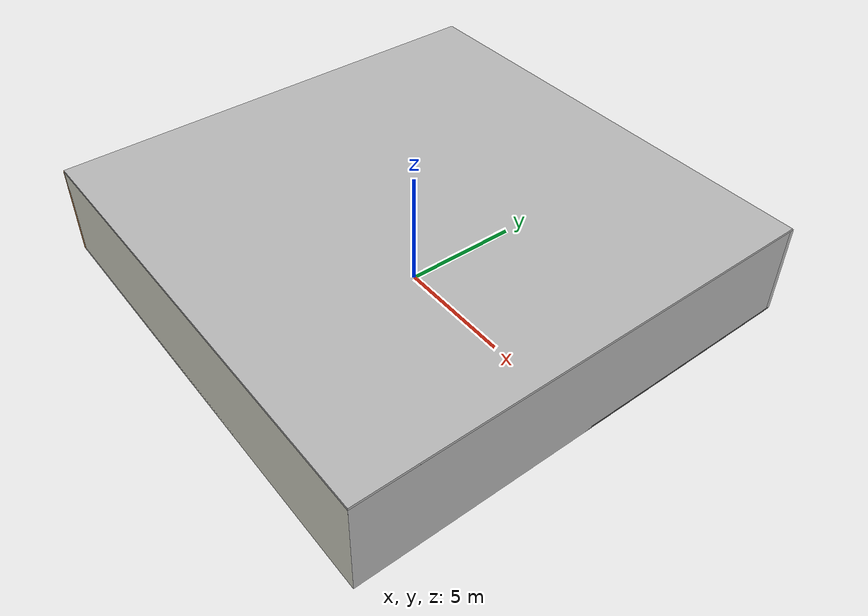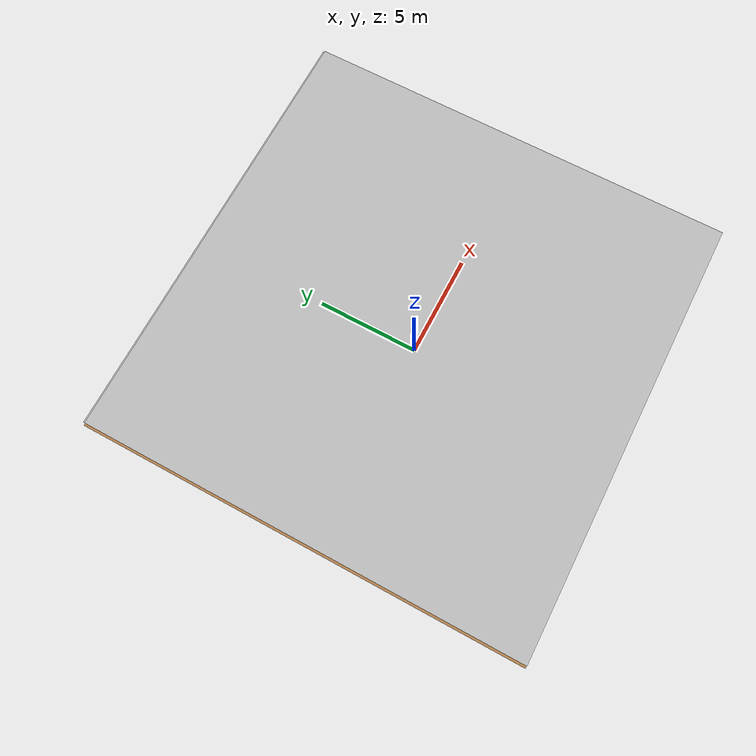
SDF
<sdf version="1.4">
 <world name="default">
  <physics type="ode">
   <max_step_size>0.001</max_step_size>
   <real_time_factor>1</real_time_factor>
   <real_time_update_rate>1000</real_time_update_rate>
   <gravity>0 0 -9.8</gravity>
  </physics>
  <scene><ambient>0.4 0.4 0.4 1</ambient><background>0.7 0.7 0.7 1</background><shadows>1</shadows></scene>
  <model name="Surrounding">
   <static>1</static>
   <link name="Ceiling">
    <collision name="Ceiling_Collision"><geometry><box><size>20 20 0.1</size></box></geometry></collision>
    <visual name="Ceiling_Visual">
     <geometry><box><size>20 20 0.1</size></box></geometry>
     <material>
      <script><uri>file://media/materials/scripts/gazebo.material</uri><name>Gazebo/PioneerBody</name></script>
     </material>
    </visual>
    <pose>0 0 4.05 0 0 0</pose>
   </link>
   <link name="Wall_South">
    <collision name="Wall_South_Collision">
     <geometry><box><size>20 0 4</size></box></geometry>
     <pose>0 0 2 0 -0 0</pose>
    </collision>
    <visual name="Wall_South_Visual">
     <pose>0 0 2 0 -0 0</pose>
     <geometry><box><size>20 0 4</size></box></geometry>
     <material>
      <script><uri>file://media/materials/scripts/gazebo.material</uri><name>Gazebo/PaintedWall</name></script>
     </material>
    </visual>
    <velocity_decay><linear>0</linear><angular>0</angular></velocity_decay>
    <pose>0 -10 0 0 -0 0</pose>
   </link>
   <link name="Wall_East">
    <collision name="Wall_21_Collision">
     <geometry><box><size>20 0 4</size></box></geometry>
     <pose>0 0 2 0 -0 0</pose>
    </collision>
    <visual name="Wall_21_Visual">
     <pose>0 0 2 0 -0 0</pose>
     <geometry><box><size>20 0 4</size></box></geometry>
     <material>
      <script><uri>file://media/materials/scripts/gazebo.material</uri><name>Gazebo/Pioneer2Body</name></script>
     </material>
    </visual>
    <velocity_decay><linear>0</linear><angular>0</angular></velocity_decay>
    <pose>10 0 0 0 -0 1.5708</pose>
   </link>
   <link name="Wall_North">
    <collision name="Wall_22_Collision">
     <geometry><box><size>20 0.2 4</size></box></geometry>
     <pose>0 0 2 0 -0 0</pose>
    </collision>
    <visual name="Wall_22_Visual">
     <pose>0 0 2 0 -0 0</pose>
     <geometry><box><size>20 0.2 4</size></box></geometry>
     <material>
      <script><uri>file://media/materials/scripts/gazebo.material</uri><name>Gazebo/CloudySky</name></script>
     </material>
    </visual>
    <velocity_decay><linear>0</linear><angular>0</angular></velocity_decay>
    <pose>0 10 0 0 -0 0</pose>
   </link>
   <link name="Wall_West">
    <collision name="Wall_23_Collision">
     <geometry><box><size>20 0.2 4</size></box></geometry>
     <pose>0 0 2 0 -0 0</pose>
    </collision>
    <visual name="Wall_23_Visual">
     <pose>0 0 2 0 -0 0</pose>
     <geometry><box><size>20 0.2 4</size></box></geometry>
     <material>
      <script><uri>file://media/materials/scripts/gazebo.material</uri><name>Gazebo/WoodPallet</name></script>
     </material>
    </visual>
    <velocity_decay><linear>0</linear><angular>0</angular></velocity_decay>
    <pose>-10 0 0 0 0 -1.5708</pose>
   </link>
   <link name="Ground_link">
    <collision name="collision">
     <pose>0 0 .05 0 -0 0</pose>
     <geometry><box><size>20 20 0.1</size></box></geometry>
    </collision>
    <visual name="visual">
     <pose>0 0 .05 0 -0 0</pose>
     <geometry><box><size>20 20 0.1</size></box></geometry>
     <material>
      <script><uri>file://media/materials/scripts/gazebo.material</uri><name>Gazebo/FlatBlack</name></script>
     </material>
    </visual>
   </link>
   <static>1</static>
  </model>
  <spherical_coordinates>
   <surface_model>EARTH_WGS84</surface_model>
   <latitude_deg>0</latitude_deg>
   <longitude_deg>0</longitude_deg>
   <elevation>0</elevation>
   <heading_deg>0</heading_deg>
  </spherical_coordinates>
  <light name="lightball_0" type="diffuse">
   <diffuse>0.8 0.8 0.8 1</diffuse>
   <specular>0.2 0.2 0.2 1</specular>
   <attenuation>
    <range>100</range>
    <constant>0.7</constant>
    <linear>0.01</linear>
    <quadratic>0.001</quadratic>
   </attenuation>
   <direction>-0.5 0.1 -0.9</direction>
   <pose>2.16224735186 -8.7540311315 3.37321346397 0 0 0</pose>
  </light>
  <include>
   <uri>model://construction_cone</uri>
   <pose>-6.63173927275 -8.69577839158 0 0 0 0.077369469476</pose>
  </include>
  <include><uri>model://table</uri><pose>-3.57777712499 4.81086774056 0 0 0 0.21637497579</pose></include>
  <include><uri>model://cabinet</uri><pose>4.57191046078 -8.52538310568 0 0 0 1.31424557731</pose></include>
  <include><uri>model://cabinet</uri><pose>5.59906701592 -2.02383029874 0 0 0 0.954588184743</pose></include>
  <include>
   <uri>model://construction_cone</uri>
   <pose>6.72026599996 1.21453395953 0 0 0 0.924617805791</pose>
  </include>
 </world>
</sdf>

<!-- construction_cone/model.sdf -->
<sdf version="1.5">
  <model name="Construction Cone">
    <link name="link">
      <collision name="collision">
        <geometry>
          <mesh>
            <scale>10 10 10</scale>
            <uri>file://isr-testbed/construction_cone/meshes/construction_cone.dae</uri>
          </mesh>
        </geometry>
      </collision>
      <visual name="visual">
        <geometry>
          <mesh>
            <scale>10 10 10</scale>
            <uri>file://isr-testbed/construction_cone/meshes/construction_cone.dae</uri>
          </mesh>
        </geometry>
      </visual>
    </link>
  </model>
</sdf>

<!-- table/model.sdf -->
<sdf version="1.5">
  <model name="table">
    <static>true</static>
    <link name="link">
      <collision name="surface">
        <pose>0 0 1.0 0 0 0</pose>
        <geometry>
          <box>
            <size>1.5 0.8 0.03</size>
          </box>
        </geometry>
        <surface>
          <friction>
            <ode>
              <mu>0.6</mu>
              <mu2>0.6</mu2>
            </ode>
          </friction>
        </surface>
      </collision>
      <visual name="visual1">
        <pose>0 0 1.0 0 0 0</pose>
        <geometry>
          <box>
            <size>1.5 0.8 0.03</size>
          </box>
        </geometry>
        <material>
          <script>
            <uri>model://media/materials/scripts/gazebo.material</uri>
            <name>Gazebo/Wood</name>
          </script>
        </material>
      </visual>
      <collision name="front_left_leg">
        <pose>0.68 0.38 0.5 0 0 0</pose>
        <geometry>
          <cylinder>
            <radius>0.02</radius>
            <length>1.0</length>
          </cylinder>
        </geometry>
      </collision>
      <visual name="front_left_leg">
        <pose>0.68 0.38 0.5 0 0 0</pose>
        <geometry>
          <cylinder>
            <radius>0.02</radius>
            <length>1.0</length>
          </cylinder>
        </geometry>
        <material>
          <script>
            <uri>model://media/materials/scripts/gazebo.material</uri>
            <name>Gazebo/Grey</name>
          </script>
        </material>
      </visual>
      <collision name="front_right_leg">
        <pose>0.68 -0.38 0.5 0 0 0</pose>
        <geometry>
          <cylinder>
            <radius>0.02</radius>
            <length>1.0</length>
          </cylinder>
        </geometry>
      </collision>
      <visual name="front_right_leg">
        <pose>0.68 -0.38 0.5 0 0 0</pose>
        <geometry>
          <cylinder>
            <radius>0.02</radius>
            <length>1.0</length>
          </cylinder>
        </geometry>
        <material>
          <script>
            <uri>model://media/materials/scripts/gazebo.material</uri>
            <name>Gazebo/Grey</name>
          </script>
        </material>
      </visual>
      <collision name="back_right_leg">
        <pose>-0.68 -0.38 0.5 0 0 0</pose>
        <geometry>
          <cylinder>
            <radius>0.02</radius>
            <length>1.0</length>
          </cylinder>
        </geometry>
      </collision>
      <visual name="back_right_leg">
        <pose>-0.68 -0.38 0.5 0 0 0</pose>
        <geometry>
          <cylinder>
            <radius>0.02</radius>
            <length>1.0</length>
          </cylinder>
        </geometry>
        <material>
          <script>
            <uri>model://media/materials/scripts/gazebo.material</uri>
            <name>Gazebo/Grey</name>
          </script>
        </material>
      </visual>
      <collision name="back_left_leg">
        <pose>-0.68 0.38 0.5 0 0 0</pose>
        <geometry>
          <cylinder>
            <radius>0.02</radius>
            <length>1.0</length>
          </cylinder>
        </geometry>
      </collision>
      <visual name="back_left_leg">
        <pose>-0.68 0.38 0.5 0 0 0</pose>
        <geometry>
          <cylinder>
            <radius>0.02</radius>
            <length>1.0</length>
          </cylinder>
        </geometry>
        <material>
          <script>
            <uri>model://media/materials/scripts/gazebo.material</uri>
            <name>Gazebo/Grey</name>
          </script>
        </material>
      </visual>
    </link>
  </model>
</sdf>

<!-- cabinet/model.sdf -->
<sdf version="1.5">
  <model name="cabinet">
    <static>true</static>
    <link name="cabinet_bottom_plate">
      <inertial>
        <pose>0 0 -1 0 0 0</pose>
        <inertia>
          <ixx>2.050000</ixx>
          <ixy>0</ixy>
          <ixz>0</ixz>
          <iyy>2.050000</iyy>
          <iyz>0</iyz>
          <izz>2.050000</izz>
        </inertia>
        <mass>25.000000</mass>
      </inertial>
      <collision name="cabinet_bottom_plate_geom">
        <pose>0 0 0.010000 0 0 0</pose>
        <geometry>
          <box>
            <size>0.450000 0.450000 0.020000</size>
          </box>
        </geometry>
      </collision>
      <visual name="cabinet_bottom_plate_geom_visual">
        <pose>0 0 0.010000 0 0 0</pose>
        <geometry>
          <box>
            <size>0.450000 0.450000 0.020000</size>
          </box>
        </geometry>
        <material>
          <script>
            <uri>model://media/materials/scripts/gazebo.material</uri>
            <name>Gazebo/Wood</name>
          </script>
        </material>
      </visual>
      <collision name="cabinet_bottom_plate_geom_cabinet_back_plate">
        <pose>0.235000 0 0.510000 0 0 0</pose>
        <geometry>
          <box>
            <size>0.020000 0.450000 1.020000</size>
          </box>
        </geometry>
      </collision>
      <visual name="cabinet_bottom_plate_geom_cabinet_back_plate_visual">
        <pose>0.235000 0 0.510000 0 0 0</pose>
        <geometry>
          <box>
            <size>0.020000 0.450000 1.020000</size>
          </box>
        </geometry>
        <material>
          <script>
            <uri>model://media/materials/scripts/gazebo.material</uri>
            <name>Gazebo/Wood</name>
          </script>
        </material>
      </visual>
      <collision name="cabinet_bottom_plate_geom_cabinet_left_plate">
        <pose>0 0.235000 0.510000 0 0 0</pose>
        <geometry>
          <box>
            <size>0.450000 0.020000 1.020000</size>
          </box>
        </geometry>
      </collision>
      <visual name="cabinet_bottom_plate_geom_cabinet_left_plate_visual">
        <pose>0 0.235000 0.510000 0 0 0</pose>
        <geometry>
          <box>
            <size>0.450000 0.020000 1.020000</size>
          </box>
        </geometry>
        <material>
          <script>
            <uri>model://media/materials/scripts/gazebo.material</uri>
            <name>Gazebo/Wood</name>
          </script>
        </material>
      </visual>
      <collision name="cabinet_bottom_plate_geom_cabinet_middle_plate">
        <pose>0 0 0.510000 0 0 0</pose>
        <geometry>
          <box>
            <size>0.450000 0.450000 0.020000</size>
          </box>
        </geometry>
      </collision>
      <visual name="cabinet_bottom_plate_geom_cabinet_middle_plate_visual">
        <pose>0 0 0.510000 0 0 0</pose>
        <geometry>
          <box>
            <size>0.450000 0.450000 0.020000</size>
          </box>
        </geometry>
        <material>
          <script>
            <uri>model://media/materials/scripts/gazebo.material</uri>
            <name>Gazebo/Wood</name>
          </script>
        </material>
      </visual>
      <collision name="cabinet_bottom_plate_geom_cabinet_right_plate">
        <pose>0 -0.235000 0.510000 0 0 0</pose>
        <geometry>
          <box>
            <size>0.450000 0.020000 1.020000</size>
          </box>
        </geometry>
      </collision>
      <visual name="cabinet_bottom_plate_geom_cabinet_right_plate_visual">
        <pose>0 -0.235000 0.510000 0 0 0</pose>
        <geometry>
          <box>
            <size>0.450000 0.020000 1.020000</size>
          </box>
        </geometry>
        <material>
          <script>
            <uri>model://media/materials/scripts/gazebo.material</uri>
            <name>Gazebo/Wood</name>
          </script>
        </material>
      </visual>
      <collision name="cabinet_bottom_plate_geom_cabinet_top_plate">
        <pose>0 0 1.010000 0 0 0</pose>
        <geometry>
          <box>
            <size>0.450000 0.450000 0.020000</size>
          </box>
        </geometry>
      </collision>
      <visual name="cabinet_bottom_plate_geom_cabinet_top_plate_visual">
        <pose>0 0 1.010000 0 0 0</pose>
        <geometry>
          <box>
            <size>0.450000 0.450000 0.020000</size>
          </box>
        </geometry>
        <material>
          <script>
            <uri>model://media/materials/scripts/gazebo.material</uri>
            <name>Gazebo/Wood</name>
          </script>
        </material>
      </visual>
    </link>
  </model>
</sdf>
